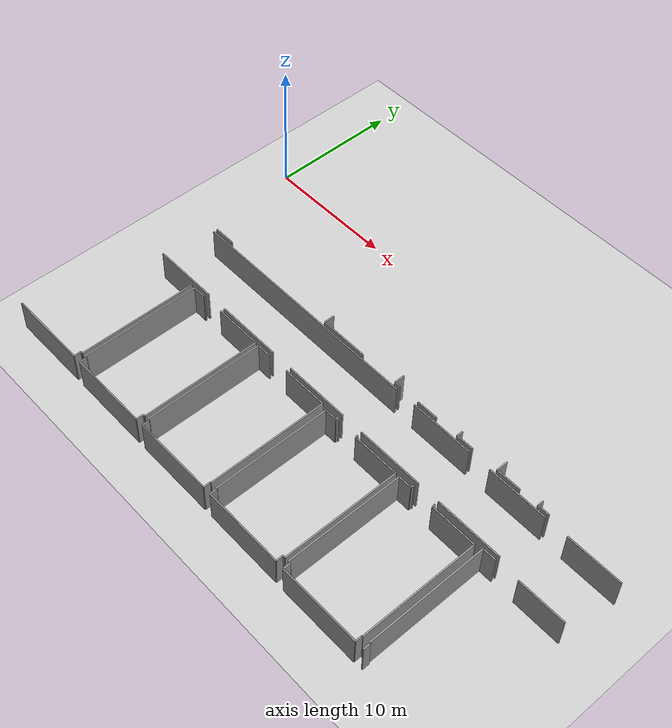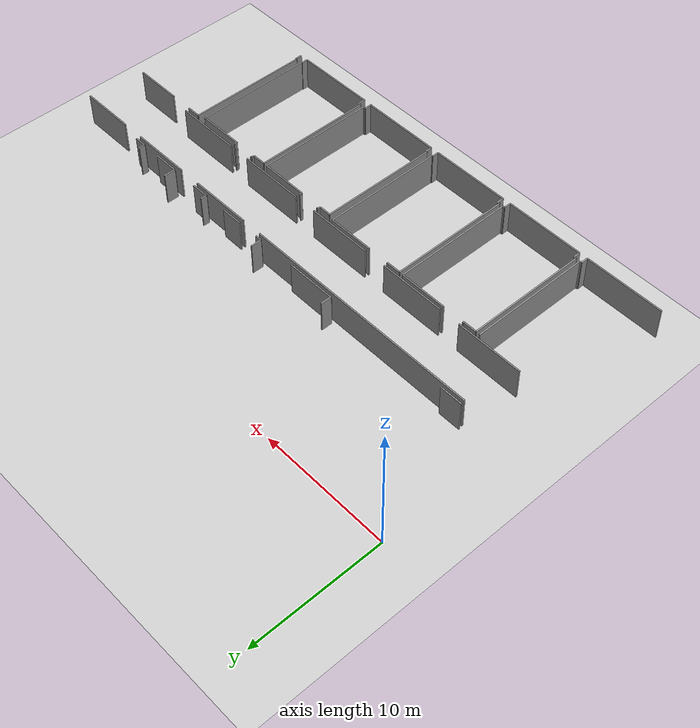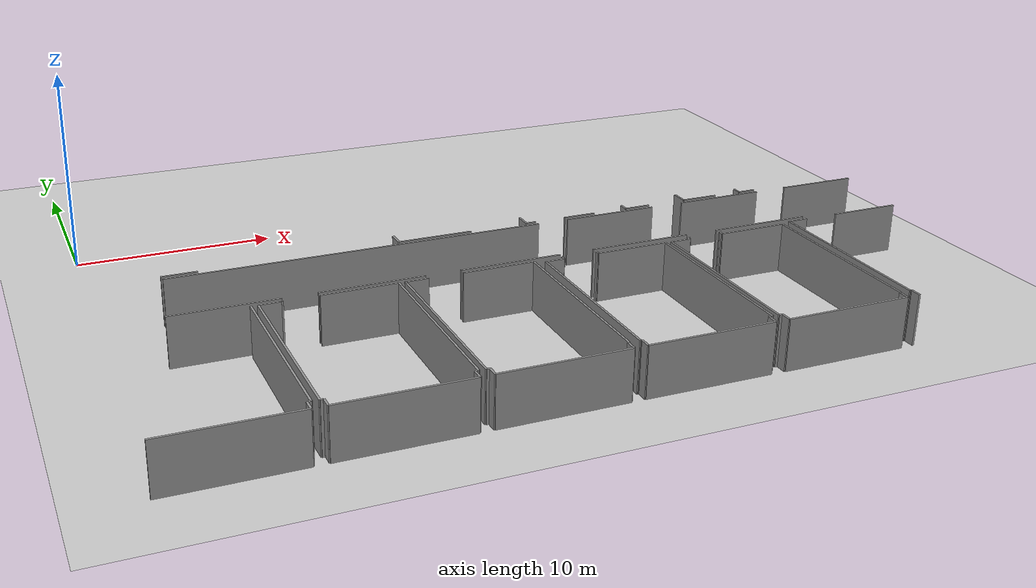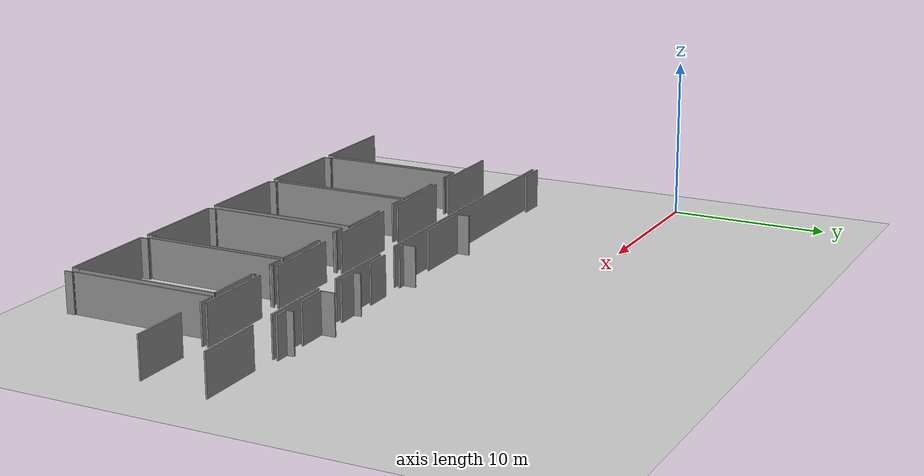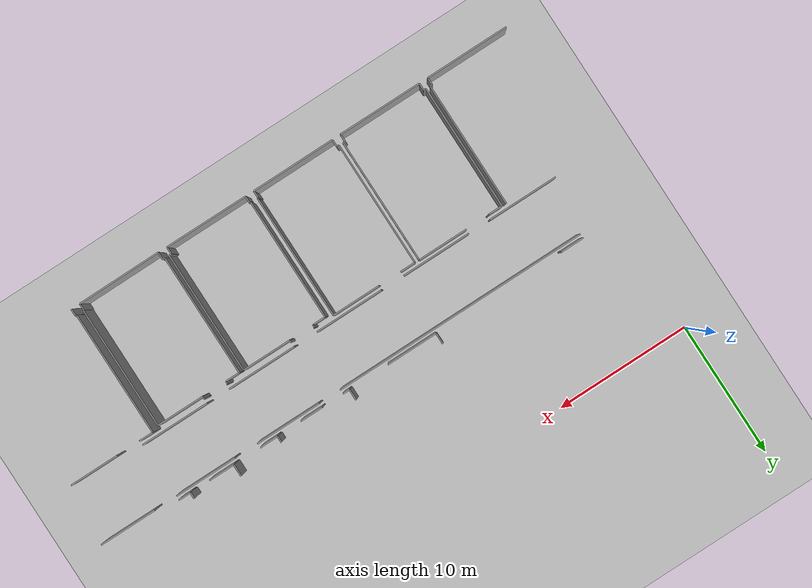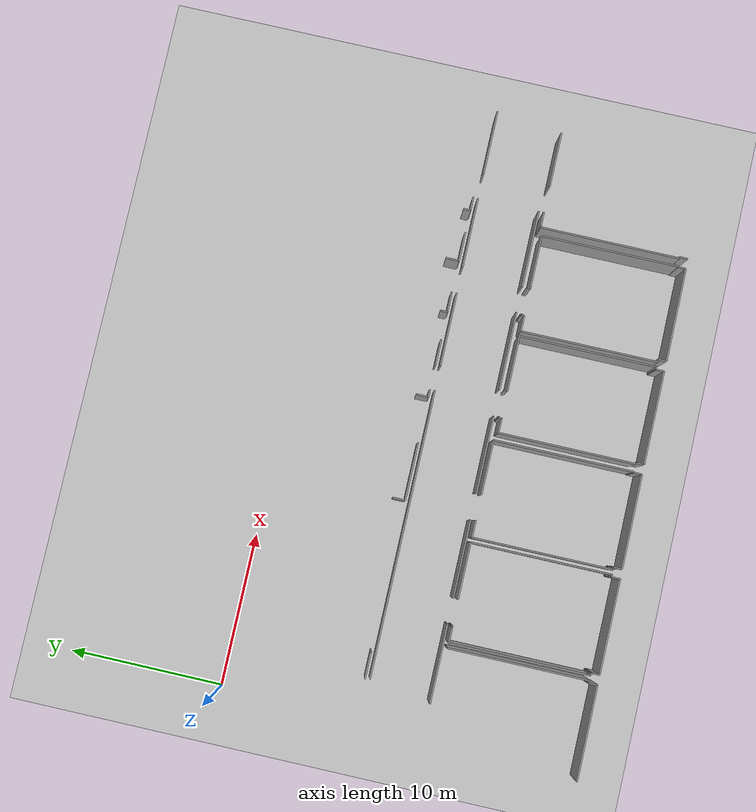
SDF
<sdf version="1.6">
 <world name="default">
  <model name="ground_plane">
   <static>1</static>
   <link name="link">
    <collision name="collision">
     <geometry><plane><normal>0 0 1</normal><size>100 100</size></plane></geometry>
     <surface><friction><ode><mu>100</mu><mu2>50</mu2></ode></friction></surface>
    </collision>
    <visual name="visual">
     <cast_shadows>0</cast_shadows>
     <geometry><plane><normal>0 0 1</normal><size>100 100</size></plane></geometry>
     <material>
      <script><uri>file://media/materials/scripts/gazebo.material</uri><name>Gazebo/Grey</name></script>
     </material>
    </visual>
   </link>
  </model>
  <model name="0510032192_A_40_1_203">
   <static>1</static>
   <link name="Wall_77">
    <collision name="Wall_77_Collision">
     <geometry><box><size>9.20726708903 0.1 2.5</size></box></geometry>
     <pose>4.60363354452 0 1.25 0 0 0</pose>
    </collision>
    <visual name="Wall_77_Visual">
     <pose>4.60363354452 0 1.25 0 0 0</pose>
     <geometry><box><size>9.20726708903 0.1 2.5</size></box></geometry>
     <material>
      <script><uri>file://media/materials/scripts/gazebo.material</uri><name>Gazebo/Grey</name></script>
      <ambient>1 1 1 1</ambient>
     </material>
    </visual>
    <pose>70.3219861852 -36.9708642854 0 0 0 -1.57079632679</pose>
   </link>
   <link name="Wall_78">
    <collision name="Wall_78_Collision">
     <geometry><box><size>0.165600157593 0.1 2.5</size></box></geometry>
     <pose>0.0828000787967 0 1.25 0 0 0</pose>
    </collision>
    <visual name="Wall_78_Visual">
     <pose>0.0828000787967 0 1.25 0 0 0</pose>
     <geometry><box><size>0.165600157593 0.1 2.5</size></box></geometry>
     <material>
      <script><uri>file://media/materials/scripts/gazebo.material</uri><name>Gazebo/Grey</name></script>
      <ambient>1 1 1 1</ambient>
     </material>
    </visual>
    <pose>70.3219861852 -46.1781313744 0 0 0 3.14159265359</pose>
   </link>
   <link name="Wall_79">
    <collision name="Wall_79_Collision">
     <geometry><box><size>0.54776414369 0.1 2.5</size></box></geometry>
     <pose>0.273882071845 0 1.25 0 0 0</pose>
    </collision>
    <visual name="Wall_79_Visual">
     <pose>0.273882071845 0 1.25 0 0 0</pose>
     <geometry><box><size>0.54776414369 0.1 2.5</size></box></geometry>
     <material>
      <script><uri>file://media/materials/scripts/gazebo.material</uri><name>Gazebo/Grey</name></script>
      <ambient>1 1 1 1</ambient>
     </material>
    </visual>
    <pose>70.1563860276 -46.1781313744 0 0 0 -1.57079632679</pose>
   </link>
   <link name="Wall_80">
    <collision name="Wall_80_Collision">
     <geometry><box><size>6.16291916228 0.1 2.5</size></box></geometry>
     <pose>3.08145958114 0 1.25 0 0 0</pose>
    </collision>
    <visual name="Wall_80_Visual">
     <pose>3.08145958114 0 1.25 0 0 0</pose>
     <geometry><box><size>6.16291916228 0.1 2.5</size></box></geometry>
     <material>
      <script><uri>file://media/materials/scripts/gazebo.material</uri><name>Gazebo/Grey</name></script>
      <ambient>1 1 1 1</ambient>
     </material>
    </visual>
    <pose>70.1563860276 -46.7258955181 0 0 0 -3.14113897054</pose>
   </link>
   <link name="Wall_81">
    <collision name="Wall_81_Collision">
     <geometry><box><size>0.527556603354 0.1 2.5</size></box></geometry>
     <pose>0.263778301677 0 1.25 0 0 0</pose>
    </collision>
    <visual name="Wall_81_Visual">
     <pose>0.263778301677 0 1.25 0 0 0</pose>
     <geometry><box><size>0.527556603354 0.1 2.5</size></box></geometry>
     <material>
      <script><uri>file://media/materials/scripts/gazebo.material</uri><name>Gazebo/Grey</name></script>
      <ambient>1 1 1 1</ambient>
     </material>
    </visual>
    <pose>70.8194221152 -46.7258955181 0 0 0 1.57079632679</pose>
   </link>
   <link name="Wall_82">
    <collision name="Wall_82_Collision">
     <geometry><box><size>0.170429632642 0.1 2.5</size></box></geometry>
     <pose>0.0852148163211 0 1.25 0 0 0</pose>
    </collision>
    <visual name="Wall_82_Visual">
     <pose>0.0852148163211 0 1.25 0 0 0</pose>
     <geometry><box><size>0.170429632642 0.1 2.5</size></box></geometry>
     <material>
      <script><uri>file://media/materials/scripts/gazebo.material</uri><name>Gazebo/Grey</name></script>
      <ambient>1 1 1 1</ambient>
     </material>
    </visual>
    <pose>70.8194221152 -46.1983389148 0 0 0 3.14159265359</pose>
   </link>
   <link name="Wall_83">
    <collision name="Wall_83_Collision">
     <geometry><box><size>9.20269179688 0.1 2.5</size></box></geometry>
     <pose>4.60134589844 0 1.25 0 0 0</pose>
    </collision>
    <visual name="Wall_83_Visual">
     <pose>4.60134589844 0 1.25 0 0 0</pose>
     <geometry><box><size>9.20269179688 0.1 2.5</size></box></geometry>
     <material>
      <script><uri>file://media/materials/scripts/gazebo.material</uri><name>Gazebo/Grey</name></script>
      <ambient>1 1 1 1</ambient>
     </material>
    </visual>
    <pose>70.6489924825 -46.1983389148 0 0 0 1.57079632679</pose>
   </link>
   <link name="Wall_84">
    <collision name="Wall_84_Collision">
     <geometry><box><size>1.03160128871 0.1 2.5</size></box></geometry>
     <pose>0.515800644354 0 1.25 0 0 0</pose>
    </collision>
    <visual name="Wall_84_Visual">
     <pose>0.515800644354 0 1.25 0 0 0</pose>
     <geometry><box><size>1.03160128871 0.1 2.5</size></box></geometry>
     <material>
      <script><uri>file://media/materials/scripts/gazebo.material</uri><name>Gazebo/Grey</name></script>
      <ambient>1 1 1 1</ambient>
     </material>
    </visual>
    <pose>70.6489924825 -36.9956471179 0 0 0 0.0</pose>
   </link>
   <link name="Wall_85">
    <collision name="Wall_85_Collision">
     <geometry><box><size>0.0236390094492 0.1 2.5</size></box></geometry>
     <pose>0.0118195047246 0 1.25 0 0 0</pose>
    </collision>
    <visual name="Wall_85_Visual">
     <pose>0.0118195047246 0 1.25 0 0 0</pose>
     <geometry><box><size>0.0236390094492 0.1 2.5</size></box></geometry>
     <material>
      <script><uri>file://media/materials/scripts/gazebo.material</uri><name>Gazebo/Grey</name></script>
      <ambient>1 1 1 1</ambient>
     </material>
    </visual>
    <pose>71.6805937712 -36.9956471179 0 0 0 1.57079632679</pose>
   </link>
   <link name="Wall_86">
    <collision name="Wall_86_Collision">
     <geometry><box><size>0.0906162028888 0.1 2.5</size></box></geometry>
     <pose>0.0453081014444 0 1.25 0 0 0</pose>
    </collision>
    <visual name="Wall_86_Visual">
     <pose>0.0453081014444 0 1.25 0 0 0</pose>
     <geometry><box><size>0.0906162028888 0.1 2.5</size></box></geometry>
     <material>
      <script><uri>file://media/materials/scripts/gazebo.material</uri><name>Gazebo/Grey</name></script>
      <ambient>1 1 1 1</ambient>
     </material>
    </visual>
    <pose>71.6805937712 -36.9720081084 0 0 0 0.0</pose>
   </link>
   <link name="Wall_87">
    <collision name="Wall_87_Collision">
     <geometry><box><size>3.71119739208 0.1 2.5</size></box></geometry>
     <pose>1.85559869604 0 1.25 0 0 0</pose>
    </collision>
    <visual name="Wall_87_Visual">
     <pose>1.85559869604 0 1.25 0 0 0</pose>
     <geometry><box><size>3.71119739208 0.1 2.5</size></box></geometry>
     <material>
      <script><uri>file://media/materials/scripts/gazebo.material</uri><name>Gazebo/Grey</name></script>
      <ambient>1 1 1 1</ambient>
     </material>
    </visual>
    <pose>73.4488170963 -36.9720081084 0 0 0 0.0</pose>
   </link>
   <link name="Wall_88">
    <collision name="Wall_88_Collision">
     <geometry><box><size>9.21578221609 0.1 2.5</size></box></geometry>
     <pose>4.60789110805 0 1.25 0 0 0</pose>
    </collision>
    <visual name="Wall_88_Visual">
     <pose>4.60789110805 0 1.25 0 0 0</pose>
     <geometry><box><size>9.21578221609 0.1 2.5</size></box></geometry>
     <material>
      <script><uri>file://media/materials/scripts/gazebo.material</uri><name>Gazebo/Grey</name></script>
      <ambient>1 1 1 1</ambient>
     </material>
    </visual>
    <pose>77.1600144884 -36.9720081084 0 0 0 -1.57079632679</pose>
   </link>
   <link name="Wall_89">
    <collision name="Wall_89_Collision">
     <geometry><box><size>0.161406139788 0.1 2.5</size></box></geometry>
     <pose>0.0807030698939 0 1.25 0 0 0</pose>
    </collision>
    <visual name="Wall_89_Visual">
     <pose>0.0807030698939 0 1.25 0 0 0</pose>
     <geometry><box><size>0.161406139788 0.1 2.5</size></box></geometry>
     <material>
      <script><uri>file://media/materials/scripts/gazebo.material</uri><name>Gazebo/Grey</name></script>
      <ambient>1 1 1 1</ambient>
     </material>
    </visual>
    <pose>77.1600144884 -46.1877903245 0 0 0 3.14159265359</pose>
   </link>
   <link name="Wall_90">
    <collision name="Wall_90_Collision">
     <geometry><box><size>0.54776414369 0.1 2.5</size></box></geometry>
     <pose>0.273882071845 0 1.25 0 0 0</pose>
    </collision>
    <visual name="Wall_90_Visual">
     <pose>0.273882071845 0 1.25 0 0 0</pose>
     <geometry><box><size>0.54776414369 0.1 2.5</size></box></geometry>
     <material>
      <script><uri>file://media/materials/scripts/gazebo.material</uri><name>Gazebo/Grey</name></script>
      <ambient>1 1 1 1</ambient>
     </material>
    </visual>
    <pose>76.9986083486 -46.1877903245 0 0 0 -1.57079632679</pose>
   </link>
   <link name="Wall_91">
    <collision name="Wall_91_Collision">
     <geometry><box><size>6.17919378261 0.1 2.5</size></box></geometry>
     <pose>3.0895968913 0 1.25 0 0 0</pose>
    </collision>
    <visual name="Wall_91_Visual">
     <pose>3.0895968913 0 1.25 0 0 0</pose>
     <geometry><box><size>6.17919378261 0.1 2.5</size></box></geometry>
     <material>
      <script><uri>file://media/materials/scripts/gazebo.material</uri><name>Gazebo/Grey</name></script>
      <ambient>1 1 1 1</ambient>
     </material>
    </visual>
    <pose>76.9986083486 -46.7355544682 0 0 0 3.14002951212</pose>
   </link>
   <link name="Wall_92">
    <collision name="Wall_92_Collision">
     <geometry><box><size>0.528446243495 0.1 2.5</size></box></geometry>
     <pose>0.264223121747 0 1.25 0 0 0</pose>
    </collision>
    <visual name="Wall_92_Visual">
     <pose>0.264223121747 0 1.25 0 0 0</pose>
     <geometry><box><size>0.528446243495 0.1 2.5</size></box></geometry>
     <material>
      <script><uri>file://media/materials/scripts/gazebo.material</uri><name>Gazebo/Grey</name></script>
      <ambient>1 1 1 1</ambient>
     </material>
    </visual>
    <pose>77.6424536275 -46.7258955181 0 0 0 1.57079632679</pose>
   </link>
   <link name="Wall_93">
    <collision name="Wall_93_Collision">
     <geometry><box><size>0.163312511518 0.1 2.5</size></box></geometry>
     <pose>0.0816562557588 0 1.25 0 0 0</pose>
    </collision>
    <visual name="Wall_93_Visual">
     <pose>0.0816562557588 0 1.25 0 0 0</pose>
     <geometry><box><size>0.163312511518 0.1 2.5</size></box></geometry>
     <material>
      <script><uri>file://media/materials/scripts/gazebo.material</uri><name>Gazebo/Grey</name></script>
      <ambient>1 1 1 1</ambient>
     </material>
    </visual>
    <pose>77.6424536275 -46.1974492746 0 0 0 3.14159265359</pose>
   </link>
   <link name="Wall_94">
    <collision name="Wall_94_Collision">
     <geometry><box><size>9.20841091207 0.1 2.5</size></box></geometry>
     <pose>4.60420545604 0 1.25 0 0 0</pose>
    </collision>
    <visual name="Wall_94_Visual">
     <pose>4.60420545604 0 1.25 0 0 0</pose>
     <geometry><box><size>9.20841091207 0.1 2.5</size></box></geometry>
     <material>
      <script><uri>file://media/materials/scripts/gazebo.material</uri><name>Gazebo/Grey</name></script>
      <ambient>1 1 1 1</ambient>
     </material>
    </visual>
    <pose>77.479141116 -46.1974492746 0 0 0 1.57079632679</pose>
   </link>
   <link name="Wall_95">
    <collision name="Wall_95_Collision">
     <geometry><box><size>1.12590314361 0.1 2.5</size></box></geometry>
     <pose>0.562951571803 0 1.25 0 0 0</pose>
    </collision>
    <visual name="Wall_95_Visual">
     <pose>0.562951571803 0 1.25 0 0 0</pose>
     <geometry><box><size>1.12590314361 0.1 2.5</size></box></geometry>
     <material>
      <script><uri>file://media/materials/scripts/gazebo.material</uri><name>Gazebo/Grey</name></script>
      <ambient>1 1 1 1</ambient>
     </material>
    </visual>
    <pose>77.479141116 -36.9890383626 0 0 0 0.0</pose>
   </link>
   <link name="Wall_96">
    <collision name="Wall_96_Collision">
     <geometry><box><size>3.58296212039 0.1 2.5</size></box></geometry>
     <pose>1.7914810602 0 1.25 0 0 0</pose>
    </collision>
    <visual name="Wall_96_Visual">
     <pose>1.7914810602 0 1.25 0 0 0</pose>
     <geometry><box><size>3.58296212039 0.1 2.5</size></box></geometry>
     <material>
      <script><uri>file://media/materials/scripts/gazebo.material</uri><name>Gazebo/Grey</name></script>
      <ambient>1 1 1 1</ambient>
     </material>
    </visual>
    <pose>80.285828668 -36.9890383626 0 0 0 0.0</pose>
   </link>
   <link name="Wall_97">
    <collision name="Wall_97_Collision">
     <geometry><box><size>9.18794918884 0.1 2.5</size></box></geometry>
     <pose>4.59397459442 0 1.25 0 0 0</pose>
    </collision>
    <visual name="Wall_97_Visual">
     <pose>4.59397459442 0 1.25 0 0 0</pose>
     <geometry><box><size>9.18794918884 0.1 2.5</size></box></geometry>
     <material>
      <script><uri>file://media/materials/scripts/gazebo.material</uri><name>Gazebo/Grey</name></script>
      <ambient>1 1 1 1</ambient>
     </material>
    </visual>
    <pose>83.8687907884 -36.9890383626 0 0 0 -1.57079632679</pose>
   </link>
   <link name="Wall_98">
    <collision name="Wall_98_Collision">
     <geometry><box><size>0.0537596827797 0.1 2.5</size></box></geometry>
     <pose>0.0268798413899 0 1.25 0 0 0</pose>
    </collision>
    <visual name="Wall_98_Visual">
     <pose>0.0268798413899 0 1.25 0 0 0</pose>
     <geometry><box><size>0.0537596827797 0.1 2.5</size></box></geometry>
     <material>
      <script><uri>file://media/materials/scripts/gazebo.material</uri><name>Gazebo/Grey</name></script>
      <ambient>1 1 1 1</ambient>
     </material>
    </visual>
    <pose>83.8687907884 -46.1769875514 0 0 0 3.14159265359</pose>
   </link>
   <link name="Wall_99">
    <collision name="Wall_99_Collision">
     <geometry><box><size>0.537723919246 0.1 2.5</size></box></geometry>
     <pose>0.268861959623 0 1.25 0 0 0</pose>
    </collision>
    <visual name="Wall_99_Visual">
     <pose>0.268861959623 0 1.25 0 0 0</pose>
     <geometry><box><size>0.537723919246 0.1 2.5</size></box></geometry>
     <material>
      <script><uri>file://media/materials/scripts/gazebo.material</uri><name>Gazebo/Grey</name></script>
      <ambient>1 1 1 1</ambient>
     </material>
    </visual>
    <pose>83.8150311056 -46.1769875514 0 0 0 -1.57079632679</pose>
   </link>
   <link name="Wall_100">
    <collision name="Wall_100_Collision">
     <geometry><box><size>6.17258761026 0.1 2.5</size></box></geometry>
     <pose>3.08629380513 0 1.25 0 0 0</pose>
    </collision>
    <visual name="Wall_100_Visual">
     <pose>3.08629380513 0 1.25 0 0 0</pose>
     <geometry><box><size>6.17258761026 0.1 2.5</size></box></geometry>
     <material>
      <script><uri>file://media/materials/scripts/gazebo.material</uri><name>Gazebo/Grey</name></script>
      <ambient>1 1 1 1</ambient>
     </material>
    </visual>
    <pose>83.8150311056 -46.7147114706 0 0 0 -3.13978076297</pose>
   </link>
   <link name="Wall_101">
    <collision name="Wall_101_Collision">
     <geometry><box><size>0.515864190078 0.1 2.5</size></box></geometry>
     <pose>0.257932095039 0 1.25 0 0 0</pose>
    </collision>
    <visual name="Wall_101_Visual">
     <pose>0.257932095039 0 1.25 0 0 0</pose>
     <geometry><box><size>0.515864190078 0.1 2.5</size></box></geometry>
     <material>
      <script><uri>file://media/materials/scripts/gazebo.material</uri><name>Gazebo/Grey</name></script>
      <ambient>1 1 1 1</ambient>
     </material>
    </visual>
    <pose>84.4689166089 -46.7147114706 0 0 0 1.57079632679</pose>
   </link>
   <link name="Wall_102">
    <collision name="Wall_102_Collision">
     <geometry><box><size>0.079940521202 0.1 2.5</size></box></geometry>
     <pose>0.039970260601 0 1.25 0 0 0</pose>
    </collision>
    <visual name="Wall_102_Visual">
     <pose>0.039970260601 0 1.25 0 0 0</pose>
     <geometry><box><size>0.079940521202 0.1 2.5</size></box></geometry>
     <material>
      <script><uri>file://media/materials/scripts/gazebo.material</uri><name>Gazebo/Grey</name></script>
      <ambient>1 1 1 1</ambient>
     </material>
    </visual>
    <pose>84.4689166089 -46.1988472806 0 0 0 3.14159265359</pose>
   </link>
   <link name="Wall_103">
    <collision name="Wall_103_Collision">
     <geometry><box><size>9.00328531395 0.1 2.5</size></box></geometry>
     <pose>4.50164265697 0 1.25 0 0 0</pose>
    </collision>
    <visual name="Wall_103_Visual">
     <pose>4.50164265697 0 1.25 0 0 0</pose>
     <geometry><box><size>9.00328531395 0.1 2.5</size></box></geometry>
     <material>
      <script><uri>file://media/materials/scripts/gazebo.material</uri><name>Gazebo/Grey</name></script>
      <ambient>1 1 1 1</ambient>
     </material>
    </visual>
    <pose>84.3889760877 -46.1988472806 0 0 0 1.57079632679</pose>
   </link>
   <link name="Wall_104">
    <collision name="Wall_104_Collision">
     <geometry><box><size>0.951914950403 0.1 2.5</size></box></geometry>
     <pose>0.475957475201 0 1.25 0 0 0</pose>
    </collision>
    <visual name="Wall_104_Visual">
     <pose>0.475957475201 0 1.25 0 0 0</pose>
     <geometry><box><size>0.951914950403 0.1 2.5</size></box></geometry>
     <material>
      <script><uri>file://media/materials/scripts/gazebo.material</uri><name>Gazebo/Grey</name></script>
      <ambient>1 1 1 1</ambient>
     </material>
    </visual>
    <pose>84.3889760877 -37.1955619666 0 0 0 0.0</pose>
   </link>
   <link name="Wall_105">
    <collision name="Wall_105_Collision">
     <geometry><box><size>0.203346317843 0.1 2.5</size></box></geometry>
     <pose>0.101673158921 0 1.25 0 0 0</pose>
    </collision>
    <visual name="Wall_105_Visual">
     <pose>0.101673158921 0 1.25 0 0 0</pose>
     <geometry><box><size>0.203346317843 0.1 2.5</size></box></geometry>
     <material>
      <script><uri>file://media/materials/scripts/gazebo.material</uri><name>Gazebo/Grey</name></script>
      <ambient>1 1 1 1</ambient>
     </material>
    </visual>
    <pose>85.3408910381 -37.1955619666 0 0 0 1.57079632679</pose>
   </link>
   <link name="Wall_106">
    <collision name="Wall_106_Collision">
     <geometry><box><size>0.0873118252238 0.1 2.5</size></box></geometry>
     <pose>0.0436559126119 0 1.25 0 0 0</pose>
    </collision>
    <visual name="Wall_106_Visual">
     <pose>0.0436559126119 0 1.25 0 0 0</pose>
     <geometry><box><size>0.0873118252238 0.1 2.5</size></box></geometry>
     <material>
      <script><uri>file://media/materials/scripts/gazebo.material</uri><name>Gazebo/Grey</name></script>
      <ambient>1 1 1 1</ambient>
     </material>
    </visual>
    <pose>85.3408910381 -36.9922156488 0 0 0 0.0</pose>
   </link>
   <link name="Wall_107">
    <collision name="Wall_107_Collision">
     <geometry><box><size>0.188857892697 0.1 2.5</size></box></geometry>
     <pose>0.0944289463483 0 1.25 0 0 0</pose>
    </collision>
    <visual name="Wall_107_Visual">
     <pose>0.0944289463483 0 1.25 0 0 0</pose>
     <geometry><box><size>0.188857892697 0.1 2.5</size></box></geometry>
     <material>
      <script><uri>file://media/materials/scripts/gazebo.material</uri><name>Gazebo/Grey</name></script>
      <ambient>1 1 1 1</ambient>
     </material>
    </visual>
    <pose>87.1721517218 -36.9922156488 0 0 0 -1.57079632679</pose>
   </link>
   <link name="Wall_108">
    <collision name="Wall_108_Collision">
     <geometry><box><size>3.63316324261 0.1 2.5</size></box></geometry>
     <pose>1.81658162131 0 1.25 0 0 0</pose>
    </collision>
    <visual name="Wall_108_Visual">
     <pose>1.81658162131 0 1.25 0 0 0</pose>
     <geometry><box><size>3.63316324261 0.1 2.5</size></box></geometry>
     <material>
      <script><uri>file://media/materials/scripts/gazebo.material</uri><name>Gazebo/Grey</name></script>
      <ambient>1 1 1 1</ambient>
     </material>
    </visual>
    <pose>87.1721517218 -37.1810735415 0 0 0 0.0</pose>
   </link>
   <link name="Wall_109">
    <collision name="Wall_109_Collision">
     <geometry><box><size>9.01396099563 0.1 2.5</size></box></geometry>
     <pose>4.50698049782 0 1.25 0 0 0</pose>
    </collision>
    <visual name="Wall_109_Visual">
     <pose>4.50698049782 0 1.25 0 0 0</pose>
     <geometry><box><size>9.01396099563 0.1 2.5</size></box></geometry>
     <material>
      <script><uri>file://media/materials/scripts/gazebo.material</uri><name>Gazebo/Grey</name></script>
      <ambient>1 1 1 1</ambient>
     </material>
    </visual>
    <pose>90.8053149644 -37.1810735415 0 0 0 -1.57079632679</pose>
   </link>
   <link name="Wall_110">
    <collision name="Wall_110_Collision">
     <geometry><box><size>0.183647143302 0.1 2.5</size></box></geometry>
     <pose>0.091823571651 0 1.25 0 0 0</pose>
    </collision>
    <visual name="Wall_110_Visual">
     <pose>0.091823571651 0 1.25 0 0 0</pose>
     <geometry><box><size>0.183647143302 0.1 2.5</size></box></geometry>
     <material>
      <script><uri>file://media/materials/scripts/gazebo.material</uri><name>Gazebo/Grey</name></script>
      <ambient>1 1 1 1</ambient>
     </material>
    </visual>
    <pose>90.8053149644 -46.1950345371 0 0 0 3.14159265359</pose>
   </link>
   <link name="Wall_111">
    <collision name="Wall_111_Collision">
     <geometry><box><size>0.530479706673 0.1 2.5</size></box></geometry>
     <pose>0.265239853336 0 1.25 0 0 0</pose>
    </collision>
    <visual name="Wall_111_Visual">
     <pose>0.265239853336 0 1.25 0 0 0</pose>
     <geometry><box><size>0.530479706673 0.1 2.5</size></box></geometry>
     <material>
      <script><uri>file://media/materials/scripts/gazebo.material</uri><name>Gazebo/Grey</name></script>
      <ambient>1 1 1 1</ambient>
     </material>
    </visual>
    <pose>90.6216678211 -46.1950345371 0 0 0 -1.57079632679</pose>
   </link>
   <link name="Wall_112">
    <collision name="Wall_112_Collision">
     <geometry><box><size>6.15276069568 0.1 2.5</size></box></geometry>
     <pose>3.07638034784 0 1.25 0 0 0</pose>
    </collision>
    <visual name="Wall_112_Visual">
     <pose>3.07638034784 0 1.25 0 0 0</pose>
     <geometry><box><size>6.15276069568 0.1 2.5</size></box></geometry>
     <material>
      <script><uri>file://media/materials/scripts/gazebo.material</uri><name>Gazebo/Grey</name></script>
      <ambient>1 1 1 1</ambient>
     </material>
    </visual>
    <pose>90.6216678211 -46.7255142438 0 0 0 3.13983689236</pose>
   </link>
   <link name="Wall_113">
    <collision name="Wall_113_Collision">
     <geometry><box><size>0.541663754154 0.1 2.5</size></box></geometry>
     <pose>0.270831877077 0 1.25 0 0 0</pose>
    </collision>
    <visual name="Wall_113_Visual">
     <pose>0.270831877077 0 1.25 0 0 0</pose>
     <geometry><box><size>0.541663754154 0.1 2.5</size></box></geometry>
     <material>
      <script><uri>file://media/materials/scripts/gazebo.material</uri><name>Gazebo/Grey</name></script>
      <ambient>1 1 1 1</ambient>
     </material>
    </visual>
    <pose>91.2980485108 -46.7436883209 0 0 0 1.57079632679</pose>
   </link>
   <link name="Wall_114">
    <collision name="Wall_114_Collision">
     <geometry><box><size>0.172844370167 0.1 2.5</size></box></geometry>
     <pose>0.0864221850833 0 1.25 0 0 0</pose>
    </collision>
    <visual name="Wall_114_Visual">
     <pose>0.0864221850833 0 1.25 0 0 0</pose>
     <geometry><box><size>0.172844370167 0.1 2.5</size></box></geometry>
     <material>
      <script><uri>file://media/materials/scripts/gazebo.material</uri><name>Gazebo/Grey</name></script>
      <ambient>1 1 1 1</ambient>
     </material>
    </visual>
    <pose>91.2980485108 -46.2020245668 0 0 0 3.14159265359</pose>
   </link>
   <link name="Wall_115">
    <collision name="Wall_115_Collision">
     <geometry><box><size>9.00417495409 0.1 2.5</size></box></geometry>
     <pose>4.50208747704 0 1.25 0 0 0</pose>
    </collision>
    <visual name="Wall_115_Visual">
     <pose>4.50208747704 0 1.25 0 0 0</pose>
     <geometry><box><size>9.00417495409 0.1 2.5</size></box></geometry>
     <material>
      <script><uri>file://media/materials/scripts/gazebo.material</uri><name>Gazebo/Grey</name></script>
      <ambient>1 1 1 1</ambient>
     </material>
    </visual>
    <pose>91.1252041406 -46.2020245668 0 0 0 1.57079632679</pose>
   </link>
   <link name="Wall_116">
    <collision name="Wall_116_Collision">
     <geometry><box><size>1.04024350722 0.1 2.5</size></box></geometry>
     <pose>0.520121753608 0 1.25 0 0 0</pose>
    </collision>
    <visual name="Wall_116_Visual">
     <pose>0.520121753608 0 1.25 0 0 0</pose>
     <geometry><box><size>1.04024350722 0.1 2.5</size></box></geometry>
     <material>
      <script><uri>file://media/materials/scripts/gazebo.material</uri><name>Gazebo/Grey</name></script>
      <ambient>1 1 1 1</ambient>
     </material>
    </visual>
    <pose>91.1252041406 -37.1978496127 0 0 0 0.0</pose>
   </link>
   <link name="Wall_117">
    <collision name="Wall_117_Collision">
     <geometry><box><size>0.208811250135 0.1 2.5</size></box></geometry>
     <pose>0.104405625068 0 1.25 0 0 0</pose>
    </collision>
    <visual name="Wall_117_Visual">
     <pose>0.104405625068 0 1.25 0 0 0</pose>
     <geometry><box><size>0.208811250135 0.1 2.5</size></box></geometry>
     <material>
      <script><uri>file://media/materials/scripts/gazebo.material</uri><name>Gazebo/Grey</name></script>
      <ambient>1 1 1 1</ambient>
     </material>
    </visual>
    <pose>92.1654476479 -37.1978496127 0 0 0 1.57079632679</pose>
   </link>
   <link name="Wall_118">
    <collision name="Wall_118_Collision">
     <geometry><box><size>0.0879472824671 0.1 2.5</size></box></geometry>
     <pose>0.0439736412335 0 1.25 0 0 0</pose>
    </collision>
    <visual name="Wall_118_Visual">
     <pose>0.0439736412335 0 1.25 0 0 0</pose>
     <geometry><box><size>0.0879472824671 0.1 2.5</size></box></geometry>
     <material>
      <script><uri>file://media/materials/scripts/gazebo.material</uri><name>Gazebo/Grey</name></script>
      <ambient>1 1 1 1</ambient>
     </material>
    </visual>
    <pose>92.1654476479 -36.9890383626 0 0 0 0.0</pose>
   </link>
   <link name="Wall_119">
    <collision name="Wall_119_Collision">
     <geometry><box><size>0.056936968996 0.1 2.5</size></box></geometry>
     <pose>0.028468484498 0 1.25 0 0 0</pose>
    </collision>
    <visual name="Wall_119_Visual">
     <pose>0.028468484498 0 1.25 0 0 0</pose>
     <geometry><box><size>0.056936968996 0.1 2.5</size></box></geometry>
     <material>
      <script><uri>file://media/materials/scripts/gazebo.material</uri><name>Gazebo/Grey</name></script>
      <ambient>1 1 1 1</ambient>
     </material>
    </visual>
    <pose>93.9412964599 -36.9890383626 0 0 0 0.0</pose>
   </link>
   <link name="Wall_120">
    <collision name="Wall_120_Collision">
     <geometry><box><size>0.202456677702 0.1 2.5</size></box></geometry>
     <pose>0.101228338851 0 1.25 0 0 0</pose>
    </collision>
    <visual name="Wall_120_Visual">
     <pose>0.101228338851 0 1.25 0 0 0</pose>
     <geometry><box><size>0.202456677702 0.1 2.5</size></box></geometry>
     <material>
      <script><uri>file://media/materials/scripts/gazebo.material</uri><name>Gazebo/Grey</name></script>
      <ambient>1 1 1 1</ambient>
     </material>
    </visual>
    <pose>93.9982334289 -36.9890383626 0 0 0 -1.57079632679</pose>
   </link>
   <link name="Wall_121">
    <collision name="Wall_121_Collision">
     <geometry><box><size>3.51649329275 0.1 2.5</size></box></geometry>
     <pose>1.75824664637 0 1.25 0 0 0</pose>
    </collision>
    <visual name="Wall_121_Visual">
     <pose>1.75824664637 0 1.25 0 0 0</pose>
     <geometry><box><size>3.51649329275 0.1 2.5</size></box></geometry>
     <material>
      <script><uri>file://media/materials/scripts/gazebo.material</uri><name>Gazebo/Grey</name></script>
      <ambient>1 1 1 1</ambient>
     </material>
    </visual>
    <pose>93.9982334289 -37.1914950403 0 0 0 0.0</pose>
   </link>
   <link name="Wall_122">
    <collision name="Wall_122_Collision">
     <geometry><box><size>9.02184066545 0.1 2.5</size></box></geometry>
     <pose>4.51092033273 0 1.25 0 0 0</pose>
    </collision>
    <visual name="Wall_122_Visual">
     <pose>4.51092033273 0 1.25 0 0 0</pose>
     <geometry><box><size>9.02184066545 0.1 2.5</size></box></geometry>
     <material>
      <script><uri>file://media/materials/scripts/gazebo.material</uri><name>Gazebo/Grey</name></script>
      <ambient>1 1 1 1</ambient>
     </material>
    </visual>
    <pose>97.5147267216 -37.1914950403 0 0 0 -1.57079632679</pose>
   </link>
   <link name="Wall_123">
    <collision name="Wall_123_Collision">
     <geometry><box><size>0.046007104412 0.1 2.5</size></box></geometry>
     <pose>0.023003552206 0 1.25 0 0 0</pose>
    </collision>
    <visual name="Wall_123_Visual">
     <pose>0.023003552206 0 1.25 0 0 0</pose>
     <geometry><box><size>0.046007104412 0.1 2.5</size></box></geometry>
     <material>
      <script><uri>file://media/materials/scripts/gazebo.material</uri><name>Gazebo/Grey</name></script>
      <ambient>1 1 1 1</ambient>
     </material>
    </visual>
    <pose>97.5147267216 -46.2133357057 0 0 0 3.14159265359</pose>
   </link>
   <link name="Wall_124">
    <collision name="Wall_124_Collision">
     <geometry><box><size>0.508619977505 0.1 2.5</size></box></geometry>
     <pose>0.254309988752 0 1.25 0 0 0</pose>
    </collision>
    <visual name="Wall_124_Visual">
     <pose>0.254309988752 0 1.25 0 0 0</pose>
     <geometry><box><size>0.508619977505 0.1 2.5</size></box></geometry>
     <material>
      <script><uri>file://media/materials/scripts/gazebo.material</uri><name>Gazebo/Grey</name></script>
      <ambient>1 1 1 1</ambient>
     </material>
    </visual>
    <pose>97.4687196172 -46.2133357057 0 0 0 -1.57079632679</pose>
   </link>
   <link name="Wall_125">
    <collision name="Wall_125_Collision">
     <geometry><box><size>6.17070937663 0.1 2.5</size></box></geometry>
     <pose>3.08535468832 0 1.25 0 0 0</pose>
    </collision>
    <visual name="Wall_125_Visual">
     <pose>3.08535468832 0 1.25 0 0 0</pose>
     <geometry><box><size>6.17070937663 0.1 2.5</size></box></geometry>
     <material>
      <script><uri>file://media/materials/scripts/gazebo.material</uri><name>Gazebo/Grey</name></script>
      <ambient>1 1 1 1</ambient>
     </material>
    </visual>
    <pose>97.4687196172 -46.7219556832 0 0 0 -3.13807074366</pose>
   </link>
   <link name="Wall_126">
    <collision name="Wall_126_Collision">
     <geometry><box><size>0.537088462003 0.1 2.5</size></box></geometry>
     <pose>0.268544231001 0 1.25 0 0 0</pose>
    </collision>
    <visual name="Wall_126_Visual">
     <pose>0.268544231001 0 1.25 0 0 0</pose>
     <geometry><box><size>0.537088462003 0.1 2.5</size></box></geometry>
     <material>
      <script><uri>file://media/materials/scripts/gazebo.material</uri><name>Gazebo/Grey</name></script>
      <ambient>1 1 1 1</ambient>
     </material>
    </visual>
    <pose>98.1306118818 -46.7264038839 0 0 0 1.57079632679</pose>
   </link>
   <link name="Wall_127">
    <collision name="Wall_127_Collision">
     <geometry><box><size>0.0821010758291 0.1 2.5</size></box></geometry>
     <pose>0.0410505379146 0 1.25 0 0 0</pose>
    </collision>
    <visual name="Wall_127_Visual">
     <pose>0.0410505379146 0 1.25 0 0 0</pose>
     <geometry><box><size>0.0821010758291 0.1 2.5</size></box></geometry>
     <material>
      <script><uri>file://media/materials/scripts/gazebo.material</uri><name>Gazebo/Grey</name></script>
      <ambient>1 1 1 1</ambient>
     </material>
    </visual>
    <pose>98.1306118818 -46.1893154219 0 0 0 3.14159265359</pose>
   </link>
   <link name="Wall_128">
    <collision name="Wall_128_Collision">
     <geometry><box><size>9.19366830403 0.1 2.5</size></box></geometry>
     <pose>4.59683415201 0 1.25 0 0 0</pose>
    </collision>
    <visual name="Wall_128_Visual">
     <pose>4.59683415201 0 1.25 0 0 0</pose>
     <geometry><box><size>9.19366830403 0.1 2.5</size></box></geometry>
     <material>
      <script><uri>file://media/materials/scripts/gazebo.material</uri><name>Gazebo/Grey</name></script>
      <ambient>1 1 1 1</ambient>
     </material>
    </visual>
    <pose>98.048510806 -46.1893154219 0 0 0 1.57079632679</pose>
   </link>
   <link name="Wall_129">
    <collision name="Wall_129_Collision">
     <geometry><box><size>1.02994909987 0.1 2.5</size></box></geometry>
     <pose>0.514974549937 0 1.25 0 0 0</pose>
    </collision>
    <visual name="Wall_129_Visual">
     <pose>0.514974549937 0 1.25 0 0 0</pose>
     <geometry><box><size>1.02994909987 0.1 2.5</size></box></geometry>
     <material>
      <script><uri>file://media/materials/scripts/gazebo.material</uri><name>Gazebo/Grey</name></script>
      <ambient>1 1 1 1</ambient>
     </material>
    </visual>
    <pose>98.048510806 -36.9956471179 0 0 0 0.0</pose>
   </link>
   <link name="Wall_130">
    <collision name="Wall_130_Collision">
     <geometry><box><size>3.60329675218 0.1 2.5</size></box></geometry>
     <pose>1.80164837609 0 1.25 0 0 0</pose>
    </collision>
    <visual name="Wall_130_Visual">
     <pose>1.80164837609 0 1.25 0 0 0</pose>
     <geometry><box><size>3.60329675218 0.1 2.5</size></box></geometry>
     <material>
      <script><uri>file://media/materials/scripts/gazebo.material</uri><name>Gazebo/Grey</name></script>
      <ambient>1 1 1 1</ambient>
     </material>
    </visual>
    <pose>100.84134539 -36.9956471179 0 0 0 0.0</pose>
   </link>
   <link name="Wall_226">
    <collision name="Wall_226_Collision">
     <geometry><box><size>18.8369861534 0.1 2.5</size></box></geometry>
     <pose>9.41849307669 0 1.25 0 0 0</pose>
    </collision>
    <visual name="Wall_226_Visual">
     <pose>9.41849307669 0 1.25 0 0 0</pose>
     <geometry><box><size>18.8369861534 0.1 2.5</size></box></geometry>
     <material>
      <script><uri>file://media/materials/scripts/gazebo.material</uri><name>Gazebo/Grey</name></script>
      <ambient>1 1 1 1</ambient>
     </material>
    </visual>
    <pose>67.3310160326 -32.6294203994 0 0 0 0.0</pose>
   </link>
   <link name="Wall_227">
    <collision name="Wall_227_Collision">
     <geometry><box><size>4.87433833015 0.1 2.5</size></box></geometry>
     <pose>2.43716916507 0 1.25 0 0 0</pose>
    </collision>
    <visual name="Wall_227_Visual">
     <pose>2.43716916507 0 1.25 0 0 0</pose>
     <geometry><box><size>4.87433833015 0.1 2.5</size></box></geometry>
     <material>
      <script><uri>file://media/materials/scripts/gazebo.material</uri><name>Gazebo/Grey</name></script>
      <ambient>1 1 1 1</ambient>
     </material>
    </visual>
    <pose>87.7905787109 -32.6294203994 0 0 0 0.0</pose>
   </link>
   <link name="Wall_228">
    <collision name="Wall_228_Collision">
     <geometry><box><size>4.6002020754 0.1 2.5</size></box></geometry>
     <pose>2.3001010377 0 1.25 0 0 0</pose>
    </collision>
    <visual name="Wall_228_Visual">
     <pose>2.3001010377 0 1.25 0 0 0</pose>
     <geometry><box><size>4.6002020754 0.1 2.5</size></box></geometry>
     <material>
      <script><uri>file://media/materials/scripts/gazebo.material</uri><name>Gazebo/Grey</name></script>
      <ambient>1 1 1 1</ambient>
     </material>
    </visual>
    <pose>94.4051802474 -32.6294203994 0 0 0 0.0</pose>
   </link>
   <link name="Wall_229">
    <collision name="Wall_229_Collision">
     <geometry><box><size>4.17749591719 0.1 2.5</size></box></geometry>
     <pose>2.08874795859 0 1.25 0 0 0</pose>
    </collision>
    <visual name="Wall_229_Visual">
     <pose>2.08874795859 0 1.25 0 0 0</pose>
     <geometry><box><size>4.17749591719 0.1 2.5</size></box></geometry>
     <material>
      <script><uri>file://media/materials/scripts/gazebo.material</uri><name>Gazebo/Grey</name></script>
      <ambient>1 1 1 1</ambient>
     </material>
    </visual>
    <pose>100.744755889 -32.6294203994 0 0 0 0.0</pose>
   </link>
   <link name="Wall_238">
    <collision name="Wall_238_Collision">
     <geometry><box><size>5.09217307313 0.1 2.5</size></box></geometry>
     <pose>2.54608653657 0 1.25 0 0 0</pose>
    </collision>
    <visual name="Wall_238_Visual">
     <pose>2.54608653657 0 1.25 0 0 0</pose>
     <geometry><box><size>5.09217307313 0.1 2.5</size></box></geometry>
     <material>
      <script><uri>file://media/materials/scripts/gazebo.material</uri><name>Gazebo/Grey</name></script>
      <ambient>1 1 1 1</ambient>
     </material>
    </visual>
    <pose>99.0628276576 -36.6643197112 0 0 0 3.14159265359</pose>
   </link>
   <link name="Wall_239">
    <collision name="Wall_239_Collision">
     <geometry><box><size>5.12852122745 0.1 2.5</size></box></geometry>
     <pose>2.56426061372 0 1.25 0 0 0</pose>
    </collision>
    <visual name="Wall_239_Visual">
     <pose>2.56426061372 0 1.25 0 0 0</pose>
     <geometry><box><size>5.12852122745 0.1 2.5</size></box></geometry>
     <material>
      <script><uri>file://media/materials/scripts/gazebo.material</uri><name>Gazebo/Grey</name></script>
      <ambient>1 1 1 1</ambient>
     </material>
    </visual>
    <pose>92.2709335502 -36.6643197112 0 0 0 3.14159265359</pose>
   </link>
   <link name="Wall_240">
    <collision name="Wall_240_Collision">
     <geometry><box><size>5.06357749719 0.1 2.5</size></box></geometry>
     <pose>2.53178874859 0 1.25 0 0 0</pose>
    </collision>
    <visual name="Wall_240_Visual">
     <pose>2.53178874859 0 1.25 0 0 0</pose>
     <geometry><box><size>5.06357749719 0.1 2.5</size></box></geometry>
     <material>
      <script><uri>file://media/materials/scripts/gazebo.material</uri><name>Gazebo/Grey</name></script>
      <ambient>1 1 1 1</ambient>
     </material>
    </visual>
    <pose>85.3797810214 -36.6643197112 0 0 0 3.14159265359</pose>
   </link>
   <link name="Wall_241">
    <collision name="Wall_241_Collision">
     <geometry><box><size>5.09382526197 0.1 2.5</size></box></geometry>
     <pose>2.54691263098 0 1.25 0 0 0</pose>
    </collision>
    <visual name="Wall_241_Visual">
     <pose>2.54691263098 0 1.25 0 0 0</pose>
     <geometry><box><size>5.09382526197 0.1 2.5</size></box></geometry>
     <material>
      <script><uri>file://media/materials/scripts/gazebo.material</uri><name>Gazebo/Grey</name></script>
      <ambient>1 1 1 1</ambient>
     </material>
    </visual>
    <pose>78.5613248013 -36.6643197112 0 0 0 3.14159265359</pose>
   </link>
   <link name="Wall_242">
    <collision name="Wall_242_Collision">
     <geometry><box><size>5.13741762885 0.1 2.5</size></box></geometry>
     <pose>2.56870881443 0 1.25 0 0 0</pose>
    </collision>
    <visual name="Wall_242_Visual">
     <pose>2.56870881443 0 1.25 0 0 0</pose>
     <geometry><box><size>5.13741762885 0.1 2.5</size></box></geometry>
     <material>
      <script><uri>file://media/materials/scripts/gazebo.material</uri><name>Gazebo/Grey</name></script>
      <ambient>1 1 1 1</ambient>
     </material>
    </visual>
    <pose>71.7962469895 -36.6643197112 0 0 0 3.14159265359</pose>
   </link>
   <link name="Wall_331">
    <collision name="Wall_331_Collision">
     <geometry><box><size>1.71243017914 0.1 2.5</size></box></geometry>
     <pose>0.856215089568 0 1.25 0 0 0</pose>
    </collision>
    <visual name="Wall_331_Visual">
     <pose>0.856215089568 0 1.25 0 0 0</pose>
     <geometry><box><size>1.71243017914 0.1 2.5</size></box></geometry>
     <material>
      <script><uri>file://media/materials/scripts/gazebo.material</uri><name>Gazebo/Grey</name></script>
      <ambient>1 1 1 1</ambient>
     </material>
    </visual>
    <pose>69.0015060337 -32.3176650759 0 0 0 3.14159265359</pose>
   </link>
   <link name="Wall_348">
    <collision name="Wall_348_Collision">
     <geometry><box><size>1.68078440842 0.1 2.5</size></box></geometry>
     <pose>0.840392204211 0 1.25 0 0 0</pose>
    </collision>
    <visual name="Wall_348_Visual">
     <pose>0.840392204211 0 1.25 0 0 0</pose>
     <geometry><box><size>1.68078440842 0.1 2.5</size></box></geometry>
     <material>
      <script><uri>file://media/materials/scripts/gazebo.material</uri><name>Gazebo/Grey</name></script>
      <ambient>1 1 1 1</ambient>
     </material>
    </visual>
    <pose>89.4613228949 -32.3134710581 0 0 0 3.14159265359</pose>
   </link>
   <link name="Wall_349">
    <collision name="Wall_349_Collision">
     <geometry><box><size>0.505442691289 0.1 2.5</size></box></geometry>
     <pose>0.252721345644 0 1.25 0 0 0</pose>
    </collision>
    <visual name="Wall_349_Visual">
     <pose>0.252721345644 0 1.25 0 0 0</pose>
     <geometry><box><size>0.505442691289 0.1 2.5</size></box></geometry>
     <material>
      <script><uri>file://media/materials/scripts/gazebo.material</uri><name>Gazebo/Grey</name></script>
      <ambient>1 1 1 1</ambient>
     </material>
    </visual>
    <pose>86.156691047 -32.3134710581 0 0 0 3.14159265359</pose>
   </link>
   <link name="Wall_350">
    <collision name="Wall_350_Collision">
     <geometry><box><size>0.815164551653 0.1 2.5</size></box></geometry>
     <pose>0.407582275827 0 1.25 0 0 0</pose>
    </collision>
    <visual name="Wall_350_Visual">
     <pose>0.407582275827 0 1.25 0 0 0</pose>
     <geometry><box><size>0.815164551653 0.1 2.5</size></box></geometry>
     <material>
      <script><uri>file://media/materials/scripts/gazebo.material</uri><name>Gazebo/Grey</name></script>
      <ambient>1 1 1 1</ambient>
     </material>
    </visual>
    <pose>85.6512483558 -32.3134710581 0 0 0 1.57079632679</pose>
   </link>
   <link name="Wall_353">
    <collision name="Wall_353_Collision">
     <geometry><box><size>3.78630843824 0.1 2.5</size></box></geometry>
     <pose>1.89315421912 0 1.25 0 0 0</pose>
    </collision>
    <visual name="Wall_353_Visual">
     <pose>1.89315421912 0 1.25 0 0 0</pose>
     <geometry><box><size>3.78630843824 0.1 2.5</size></box></geometry>
     <material>
      <script><uri>file://media/materials/scripts/gazebo.material</uri><name>Gazebo/Grey</name></script>
      <ambient>1 1 1 1</ambient>
     </material>
    </visual>
    <pose>82.6300304384 -32.3205881792 0 0 0 3.14159265359</pose>
   </link>
   <link name="Wall_354">
    <collision name="Wall_354_Collision">
     <geometry><box><size>0.816816740486 0.1 2.5</size></box></geometry>
     <pose>0.408408370243 0 1.25 0 0 0</pose>
    </collision>
    <visual name="Wall_354_Visual">
     <pose>0.408408370243 0 1.25 0 0 0</pose>
     <geometry><box><size>0.816816740486 0.1 2.5</size></box></geometry>
     <material>
      <script><uri>file://media/materials/scripts/gazebo.material</uri><name>Gazebo/Grey</name></script>
      <ambient>1 1 1 1</ambient>
     </material>
    </visual>
    <pose>78.8437220002 -32.3205881792 0 0 0 1.57079632679</pose>
   </link>
   <link name="Wall_356">
    <collision name="Wall_356_Collision">
     <geometry><box><size>0.484726785158 0.1 2.5</size></box></geometry>
     <pose>0.242363392579 0 1.25 0 0 0</pose>
    </collision>
    <visual name="Wall_356_Visual">
     <pose>0.242363392579 0 1.25 0 0 0</pose>
     <geometry><box><size>0.484726785158 0.1 2.5</size></box></geometry>
     <material>
      <script><uri>file://media/materials/scripts/gazebo.material</uri><name>Gazebo/Grey</name></script>
      <ambient>1 1 1 1</ambient>
     </material>
    </visual>
    <pose>91.2965234134 -32.3198256305 0 0 0 1.57079632679</pose>
   </link>
   <link name="Wall_364">
    <collision name="Wall_364_Collision">
     <geometry><box><size>1.34319192434 0.1 2.5</size></box></geometry>
     <pose>0.671595962171 0 1.25 0 0 0</pose>
    </collision>
    <visual name="Wall_364_Visual">
     <pose>0.671595962171 0 1.25 0 0 0</pose>
     <geometry><box><size>1.34319192434 0.1 2.5</size></box></geometry>
     <material>
      <script><uri>file://media/materials/scripts/gazebo.material</uri><name>Gazebo/Grey</name></script>
      <ambient>1 1 1 1</ambient>
     </material>
    </visual>
    <pose>92.6396258428 -32.3043204738 0 0 0 -3.13004888175</pose>
   </link>
   <link name="Wall_365">
    <collision name="Wall_365_Collision">
     <geometry><box><size>0.473034371882 0.1 2.5</size></box></geometry>
     <pose>0.236517185941 0 1.25 0 0 0</pose>
    </collision>
    <visual name="Wall_365_Visual">
     <pose>0.236517185941 0 1.25 0 0 0</pose>
     <geometry><box><size>0.473034371882 0.1 2.5</size></box></geometry>
     <material>
      <script><uri>file://media/materials/scripts/gazebo.material</uri><name>Gazebo/Grey</name></script>
      <ambient>1 1 1 1</ambient>
     </material>
    </visual>
    <pose>98.1262907725 -32.3235112825 0 0 0 1.57079632679</pose>
   </link>
   <link name="Wall_371">
    <collision name="Wall_371_Collision">
     <geometry><box><size>0.907310560653 0.1 2.5</size></box></geometry>
     <pose>0.453655280326 0 1.25 0 0 0</pose>
    </collision>
    <visual name="Wall_371_Visual">
     <pose>0.453655280326 0 1.25 0 0 0</pose>
     <geometry><box><size>0.907310560653 0.1 2.5</size></box></geometry>
     <material>
      <script><uri>file://media/materials/scripts/gazebo.material</uri><name>Gazebo/Grey</name></script>
      <ambient>1 1 1 1</ambient>
     </material>
    </visual>
    <pose>99.0335966245 -32.3205881792 0 0 0 -3.138370925</pose>
   </link>
   <link name="Wall_399">
    <collision name="Wall_399_Collision">
     <geometry><box><size>0.885827397104 0.1 2.5</size></box></geometry>
     <pose>0.442913698552 0 1.25 0 0 0</pose>
    </collision>
    <visual name="Wall_399_Visual">
     <pose>0.442913698552 0 1.25 0 0 0</pose>
     <geometry><box><size>0.885827397104 0.1 2.5</size></box></geometry>
     <material>
      <script><uri>file://media/materials/scripts/gazebo.material</uri><name>Gazebo/Grey</name></script>
      <ambient>1 1 1 1</ambient>
     </material>
    </visual>
    <pose>94.7310427218 -32.3114375949 0 0 0 1.57079632679</pose>
   </link>
   <link name="Wall_405">
    <collision name="Wall_405_Collision">
     <geometry><box><size>1.90929517572 0.1 2.5</size></box></geometry>
     <pose>0.954647587859 0 1.25 0 0 0</pose>
    </collision>
    <visual name="Wall_405_Visual">
     <pose>0.954647587859 0 1.25 0 0 0</pose>
     <geometry><box><size>1.90929517572 0.1 2.5</size></box></geometry>
     <material>
      <script><uri>file://media/materials/scripts/gazebo.material</uri><name>Gazebo/Grey</name></script>
      <ambient>1 1 1 1</ambient>
     </material>
    </visual>
    <pose>96.6403375549 -32.312581418 0 0 0 3.14099357225</pose>
   </link>
   <pose>-64.55 23.3936883209 0 0 0 0</pose>
  </model>
 </world>
</sdf>
